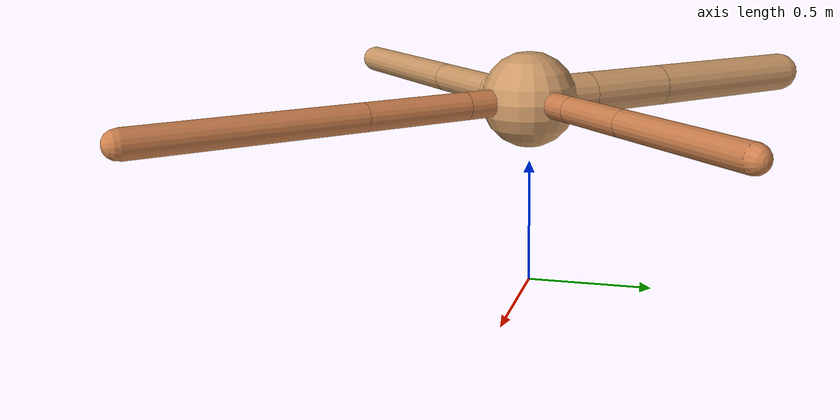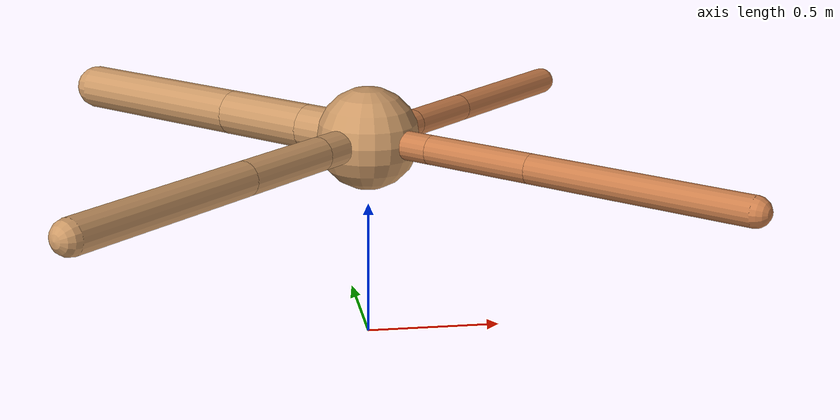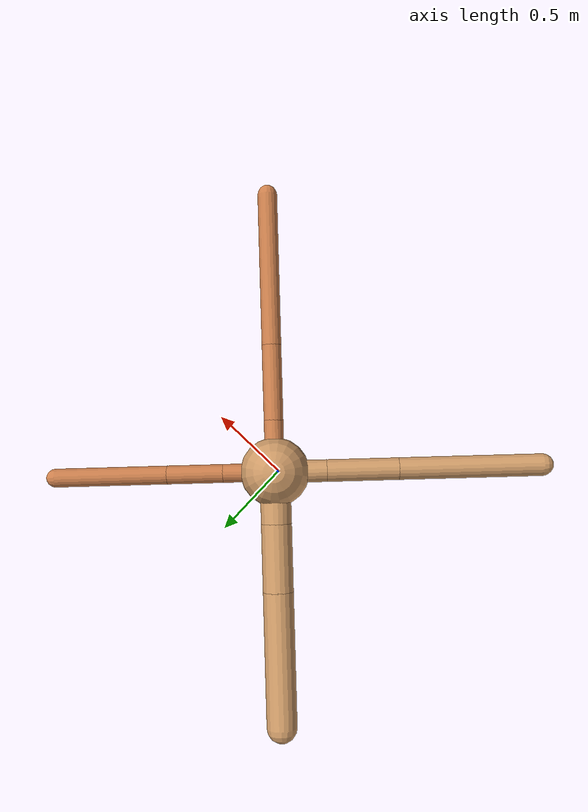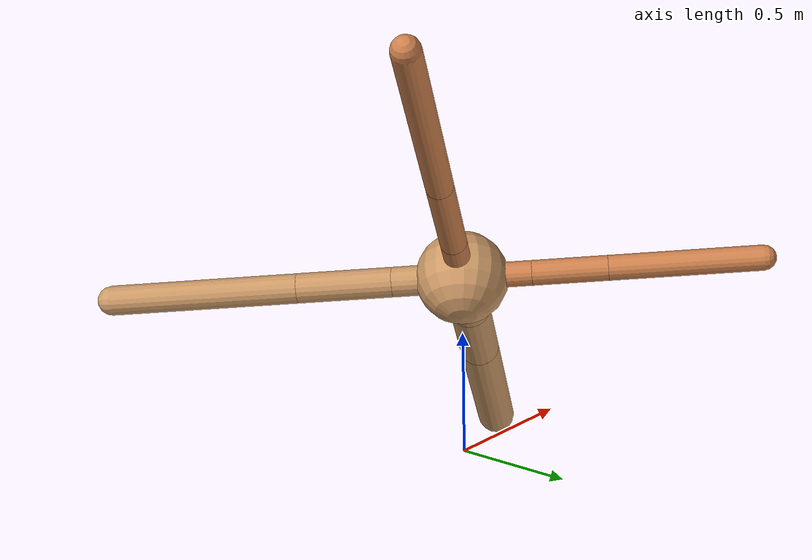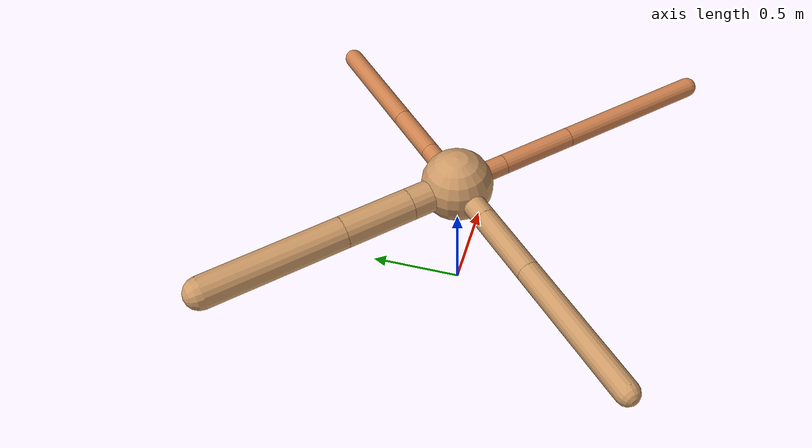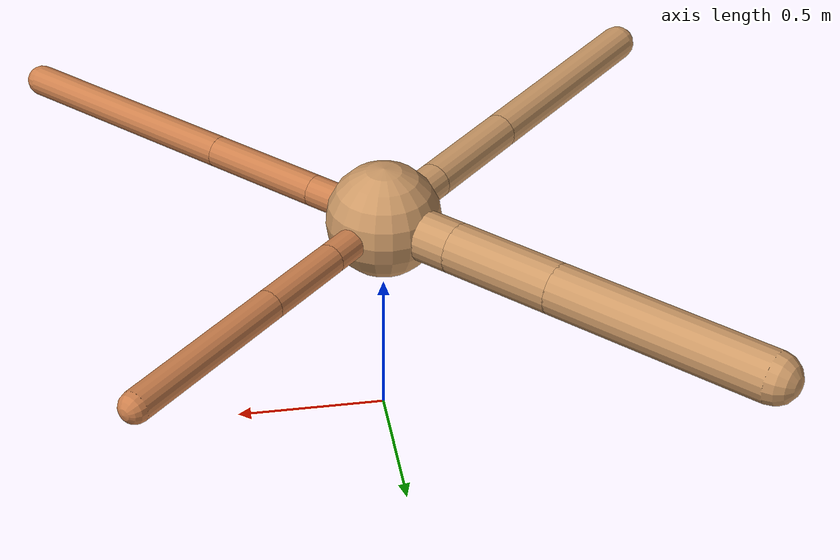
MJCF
<?xml version="1.0" ?>
<mujoco model="ant">

	<compiler angle="degree" coordinate="local" inertiafromgeom="true"/>

	<option integrator="RK4" timestep="0.01"/>

	<custom>

		<numeric data="0.0 0.0 0.55 1.0 0.0 0.0 0.0 0.0 1.0 0.0 -1.0 0.0 -1.0 0.0 1.0" name="init_qpos"/>

	</custom>

	<default>

		<joint armature="1" damping="1" limited="true"/>

		<geom conaffinity="0" condim="3" density="5.0" friction="1.5 0.1 0.1" margin="0.01" rgba="0.8 0.6 0.4 1"/>

	</default>

	<worldbody>

		<body name="torso" pos="0 0 0.75">

			<geom name="torso_geom" pos="0 0 0" size="0.1893399110172385" type="sphere"/>

			<!--joint armature="0" damping="0" limited="false" margin="0.01" name="root" pos="0 0 0" type="free"/-->

			<body name="front_left_leg" pos="0 0 0">

				<geom fromto="0 0 0 0.2 0.2 0" name="aux_1_geom" size="0.05109785581563028" type="capsule" rgba=".8 .5 .3 1"/>

				<body name="aux_1" pos="0.2 0.2 0">

					<joint axis="0 0 1" name="hip_1" pos="0.0 0.0 0.0" range="-40 40" type="hinge"/>

					<geom fromto="0 0 0 0.21525031594266758 0.21525031594266758 0" name="left_leg_geom" size="0.05109785581563028" type="capsule" rgba=".8 .5 .3 1"/>

					<body pos="0.21525031594266758 0.21525031594266758 0" name="front_left_foot">

						<joint axis="-1 1 0" name="ankle_1" pos="0.0 0.0 0.0" range="30 100" type="hinge"/>

						<geom fromto="0 0 0 0.43050063188533516 0.43050063188533516 0" name="left_ankle_geom" size="0.05109785581563028" type="capsule" rgba=".8 .5 .3 1"/>

					</body>

				</body>

			</body>

			<body name="front_right_leg" pos="0 0 0">

				<geom fromto="0 0 0 -0.2 0.2 0" name="aux_2_geom" size="0.08453343346359665" type="capsule"/>

				<body name="aux_2" pos="-0.2 0.2 0">

					<joint axis="0 0 1" name="hip_2" pos="0.0 0.0 0.0" range="-40 40" type="hinge"/>

					<geom fromto="0 0 0 -0.2629862261760149 0.2629862261760149 0" name="right_leg_geom" size="0.08453343346359665" type="capsule"/>

					<body pos="-0.2629862261760149 0.2629862261760149 0" name="front_right_foot">

						<joint axis="1 1 0" name="ankle_2" pos="0.0 0.0 0.0" range="-100 -30" type="hinge"/>

						<geom fromto="0 0 0 -0.5259724523520298 0.5259724523520298 0" name="right_ankle_geom" size="0.08453343346359665" type="capsule"/>

					</body>

				</body>

			</body>

			<body name="left_back_leg" pos="0 0 0">

				<geom fromto="0 0 0 -0.2 -0.2 0" name="aux_3_geom" size="0.061466603021511745" type="capsule"/>

				<body name="aux_3" pos="-0.2 -0.2 0">

					<joint axis="0 0 1" name="hip_3" pos="0.0 0.0 0.0" range="-40 40" type="hinge"/>

					<geom fromto="0 0 0 -0.2773644203236001 -0.2773644203236001 0" name="back_leg_geom" size="0.061466603021511745" type="capsule"/>

					<body pos="-0.2773644203236001 -0.2773644203236001 0" name="left_back_foot">

						<joint axis="-1 1 0" name="ankle_3" pos="0.0 0.0 0.0" range="-100 -30" type="hinge"/>

						<geom fromto="0 0 0 -0.5547288406472002 -0.5547288406472002 0" name="third_ankle_geom" size="0.061466603021511745" type="capsule"/>

					</body>

				</body>

			</body>

			<body name="right_back_leg" pos="0 0 0">

				<geom fromto="0 0 0 0.2 -0.2 0" name="aux_4_geom" size="0.053272580934434134" type="capsule" rgba=".8 .5 .3 1"/>

				<body name="aux_4" pos="0.2 -0.2 0">

					<joint axis="0 0 1" name="hip_4" pos="0.0 0.0 0.0" range="-40 40" type="hinge"/>

					<geom fromto="0 0 0 0.2900791128459615 -0.2900791128459615 0" name="rightback_leg_geom" size="0.053272580934434134" type="capsule" rgba=".8 .5 .3 1"/>

					<body pos="0.2900791128459615 -0.2900791128459615 0" name="right_back_foot">

						<joint axis="1 1 0" name="ankle_4" pos="0.0 0.0 0.0" range="30 100" type="hinge"/>

						<geom fromto="0 0 0 0.580158225691923 -0.580158225691923 0" name="fourth_ankle_geom" size="0.053272580934434134" type="capsule" rgba=".8 .5 .3 1"/>

					</body>

				</body>

			</body>

		</body>

	</worldbody>

	<actuator>

		<motor ctrllimited="true" ctrlrange="-1.0 1.0" joint="hip_4" gear="150"/>

		<motor ctrllimited="true" ctrlrange="-1.0 1.0" joint="ankle_4" gear="150"/>

		<motor ctrllimited="true" ctrlrange="-1.0 1.0" joint="hip_1" gear="150"/>

		<motor ctrllimited="true" ctrlrange="-1.0 1.0" joint="ankle_1" gear="150"/>

		<motor ctrllimited="true" ctrlrange="-1.0 1.0" joint="hip_2" gear="150"/>

		<motor ctrllimited="true" ctrlrange="-1.0 1.0" joint="ankle_2" gear="150"/>

		<motor ctrllimited="true" ctrlrange="-1.0 1.0" joint="hip_3" gear="150"/>

		<motor ctrllimited="true" ctrlrange="-1.0 1.0" joint="ankle_3" gear="150"/>

	</actuator>

</mujoco>
